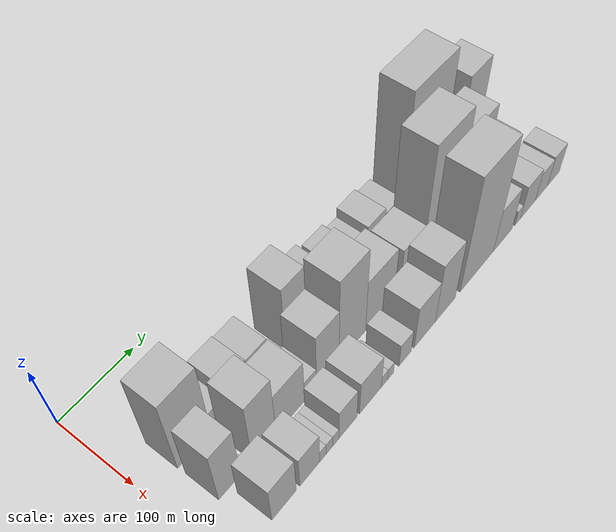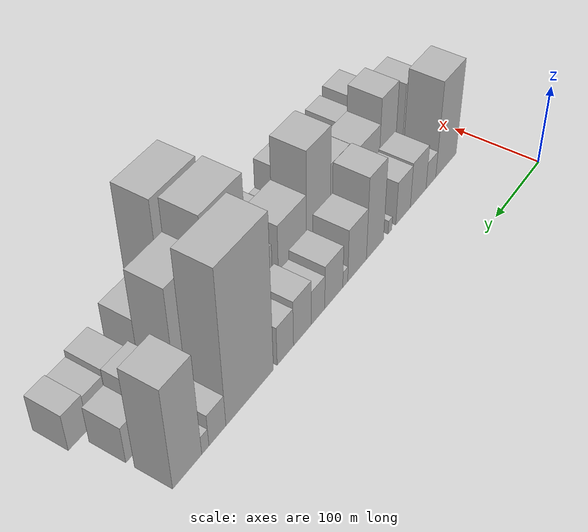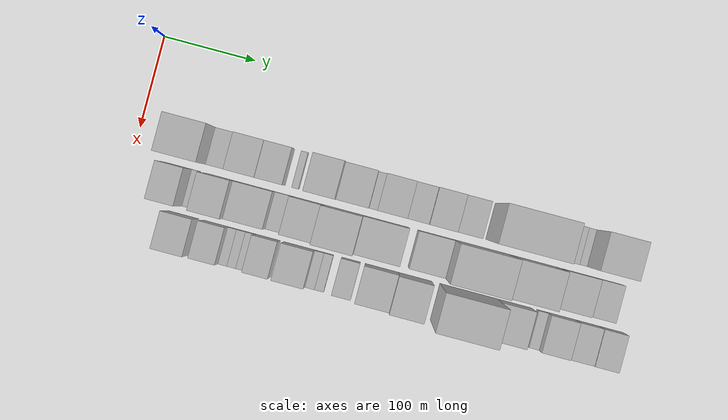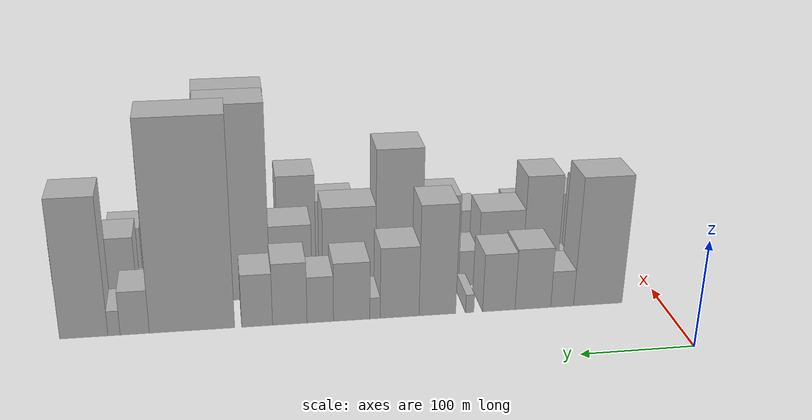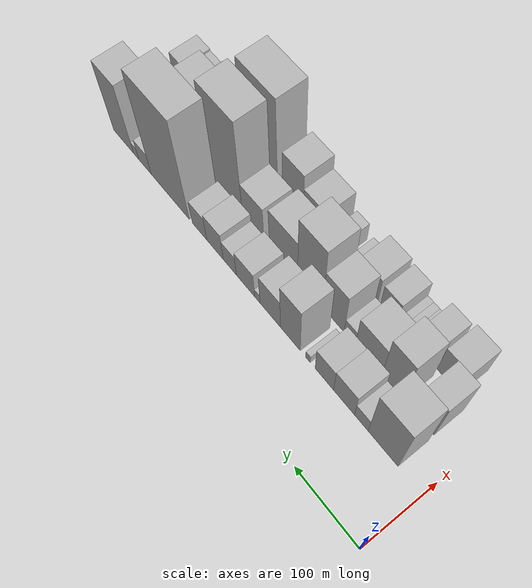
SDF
<sdf version="1.6">
 <world name="default">
  <model name="building_16">
   <static>1</static>
   <pose>100.0000 58.5204 0 0.000000 0.000000 0.000000</pose>
   <link name="link">
    <pose>0 0 63.00 0 0 0</pose>
    <collision name="collision"><geometry><box><size>40.0000 45.3403 126.0000</size></box></geometry></collision>
    <visual name="visual">
     <cast_shadows>0</cast_shadows>
     <geometry><box><size>40.0000 45.3403 126.0000</size></box></geometry>
     <material>
      <script>
       <uri>model://HANNAS_wall/materials/scripts</uri>
       <uri>model://HANNAS_wall/materials/textures</uri>
       <name>vrc/HANNAS_wall</name>
      </script>
     </material>
    </visual>
   </link>
  </model>
  <model name="building_17">
   <static>1</static>
   <pose>100.0000 91.7804 0 0.000000 0.000000 0.000000</pose>
   <link name="link">
    <pose>0 0 18.00 0 0 0</pose>
    <collision name="collision"><geometry><box><size>40.0000 21.1796 36.0000</size></box></geometry></collision>
    <visual name="visual">
     <cast_shadows>0</cast_shadows>
     <geometry><box><size>40.0000 21.1796 36.0000</size></box></geometry>
     <material>
      <script>
       <uri>model://HANNAS_wall/materials/scripts</uri>
       <uri>model://HANNAS_wall/materials/textures</uri>
       <name>vrc/HANNAS_wall</name>
      </script>
     </material>
    </visual>
   </link>
  </model>
  <model name="building_18">
   <static>1</static>
   <pose>100.0000 118.8908 0 0.000000 0.000000 0.000000</pose>
   <link name="link">
    <pose>0 0 30.00 0 0 0</pose>
    <collision name="collision"><geometry><box><size>40.0000 33.0412 60.0000</size></box></geometry></collision>
    <visual name="visual">
     <cast_shadows>0</cast_shadows>
     <geometry><box><size>40.0000 33.0412 60.0000</size></box></geometry>
     <material>
      <script>
       <uri>model://HANNAS_wall/materials/scripts</uri>
       <uri>model://HANNAS_wall/materials/textures</uri>
       <name>vrc/HANNAS_wall</name>
      </script>
     </material>
    </visual>
   </link>
  </model>
  <model name="building_19">
   <static>1</static>
   <pose>100.0000 150.2969 0 0.000000 0.000000 0.000000</pose>
   <link name="link">
    <pose>0 0 28.50 0 0 0</pose>
    <collision name="collision"><geometry><box><size>40.0000 29.7710 57.0000</size></box></geometry></collision>
    <visual name="visual">
     <cast_shadows>0</cast_shadows>
     <geometry><box><size>40.0000 29.7710 57.0000</size></box></geometry>
     <material>
      <script>
       <uri>model://HANNAS_wall/materials/scripts</uri>
       <uri>model://HANNAS_wall/materials/textures</uri>
       <name>vrc/HANNAS_wall</name>
      </script>
     </material>
    </visual>
   </link>
  </model>
  <model name="building_20">
   <static>1</static>
   <pose>100.0000 176.9472 0 0.000000 0.000000 0.000000</pose>
   <link name="link">
    <pose>0 0 9.00 0 0 0</pose>
    <collision name="collision"><geometry><box><size>40.0000 7.5295 18.0000</size></box></geometry></collision>
    <visual name="visual">
     <cast_shadows>0</cast_shadows>
     <geometry><box><size>40.0000 7.5295 18.0000</size></box></geometry>
     <material>
      <script>
       <uri>model://HANNAS_wall/materials/scripts</uri>
       <uri>model://HANNAS_wall/materials/textures</uri>
       <name>vrc/HANNAS_wall</name>
      </script>
     </material>
    </visual>
   </link>
  </model>
  <model name="building_21">
   <static>1</static>
   <pose>100.0000 206.3508 0 0.000000 0.000000 0.000000</pose>
   <link name="link">
    <pose>0 0 54.00 0 0 0</pose>
    <collision name="collision"><geometry><box><size>40.0000 33.2777 108.0000</size></box></geometry></collision>
    <visual name="visual">
     <cast_shadows>0</cast_shadows>
     <geometry><box><size>40.0000 33.2777 108.0000</size></box></geometry>
     <material>
      <script>
       <uri>model://HANNAS_wall/materials/scripts</uri>
       <uri>model://HANNAS_wall/materials/textures</uri>
       <name>vrc/HANNAS_wall</name>
      </script>
     </material>
    </visual>
   </link>
  </model>
  <model name="building_22">
   <static>1</static>
   <pose>100.0000 240.4741 0 0.000000 0.000000 0.000000</pose>
   <link name="link">
    <pose>0 0 34.50 0 0 0</pose>
    <collision name="collision"><geometry><box><size>40.0000 34.9690 69.0000</size></box></geometry></collision>
    <visual name="visual">
     <cast_shadows>0</cast_shadows>
     <geometry><box><size>40.0000 34.9690 69.0000</size></box></geometry>
     <material>
      <script>
       <uri>model://HANNAS_wall/materials/scripts</uri>
       <uri>model://HANNAS_wall/materials/textures</uri>
       <name>vrc/HANNAS_wall</name>
      </script>
     </material>
    </visual>
   </link>
  </model>
  <model name="building_23">
   <static>1</static>
   <pose>100.0000 262.5453 0 0.000000 0.000000 0.000000</pose>
   <link name="link">
    <pose>0 0 10.50 0 0 0</pose>
    <collision name="collision"><geometry><box><size>40.0000 9.1734 21.0000</size></box></geometry></collision>
    <visual name="visual">
     <cast_shadows>0</cast_shadows>
     <geometry><box><size>40.0000 9.1734 21.0000</size></box></geometry>
     <material>
      <script>
       <uri>model://HANNAS_wall/materials/scripts</uri>
       <uri>model://HANNAS_wall/materials/textures</uri>
       <name>vrc/HANNAS_wall</name>
      </script>
     </material>
    </visual>
   </link>
  </model>
  <model name="building_24">
   <static>1</static>
   <pose>100.0000 283.3164 0 0.000000 0.000000 0.000000</pose>
   <link name="link">
    <pose>0 0 28.50 0 0 0</pose>
    <collision name="collision"><geometry><box><size>40.0000 32.3688 57.0000</size></box></geometry></collision>
    <visual name="visual">
     <cast_shadows>0</cast_shadows>
     <geometry><box><size>40.0000 32.3688 57.0000</size></box></geometry>
     <material>
      <script>
       <uri>model://HANNAS_wall/materials/scripts</uri>
       <uri>model://HANNAS_wall/materials/textures</uri>
       <name>vrc/HANNAS_wall</name>
      </script>
     </material>
    </visual>
   </link>
  </model>
  <model name="building_25">
   <static>1</static>
   <pose>100.0000 311.2265 0 0.000000 0.000000 0.000000</pose>
   <link name="link">
    <pose>0 0 22.50 0 0 0</pose>
    <collision name="collision"><geometry><box><size>40.0000 23.4514 45.0000</size></box></geometry></collision>
    <visual name="visual">
     <cast_shadows>0</cast_shadows>
     <geometry><box><size>40.0000 23.4514 45.0000</size></box></geometry>
     <material>
      <script>
       <uri>model://HANNAS_wall/materials/scripts</uri>
       <uri>model://HANNAS_wall/materials/textures</uri>
       <name>vrc/HANNAS_wall</name>
      </script>
     </material>
    </visual>
   </link>
  </model>
  <model name="building_26">
   <static>1</static>
   <pose>100.0000 338.1147 0 0.000000 0.000000 0.000000</pose>
   <link name="link">
    <pose>0 0 30.00 0 0 0</pose>
    <collision name="collision"><geometry><box><size>40.0000 30.3249 60.0000</size></box></geometry></collision>
    <visual name="visual">
     <cast_shadows>0</cast_shadows>
     <geometry><box><size>40.0000 30.3249 60.0000</size></box></geometry>
     <material>
      <script>
       <uri>model://HANNAS_wall/materials/scripts</uri>
       <uri>model://HANNAS_wall/materials/textures</uri>
       <name>vrc/HANNAS_wall</name>
      </script>
     </material>
    </visual>
   </link>
  </model>
  <model name="building_27">
   <static>1</static>
   <pose>100.0000 366.7676 0 0.000000 0.000000 0.000000</pose>
   <link name="link">
    <pose>0 0 25.50 0 0 0</pose>
    <collision name="collision"><geometry><box><size>40.0000 26.9808 51.0000</size></box></geometry></collision>
    <visual name="visual">
     <cast_shadows>0</cast_shadows>
     <geometry><box><size>40.0000 26.9808 51.0000</size></box></geometry>
     <material>
      <script>
       <uri>model://HANNAS_wall/materials/scripts</uri>
       <uri>model://HANNAS_wall/materials/textures</uri>
       <name>vrc/HANNAS_wall</name>
      </script>
     </material>
    </visual>
   </link>
  </model>
  <model name="building_28">
   <static>1</static>
   <pose>100.0000 423.1120 0 0.000000 0.000000 0.000000</pose>
   <link name="link">
    <pose>0 0 99.00 0 0 0</pose>
    <collision name="collision"><geometry><box><size>40.0000 73.7081 198.0000</size></box></geometry></collision>
    <visual name="visual">
     <cast_shadows>0</cast_shadows>
     <geometry><box><size>40.0000 73.7081 198.0000</size></box></geometry>
     <material>
      <script>
       <uri>model://HANNAS_wall/materials/scripts</uri>
       <uri>model://HANNAS_wall/materials/textures</uri>
       <name>vrc/HANNAS_wall</name>
      </script>
     </material>
    </visual>
   </link>
  </model>
  <model name="building_29">
   <static>1</static>
   <pose>100.0000 472.4163 0 0.000000 0.000000 0.000000</pose>
   <link name="link">
    <pose>0 0 21.00 0 0 0</pose>
    <collision name="collision"><geometry><box><size>40.0000 24.9005 42.0000</size></box></geometry></collision>
    <visual name="visual">
     <cast_shadows>0</cast_shadows>
     <geometry><box><size>40.0000 24.9005 42.0000</size></box></geometry>
     <material>
      <script>
       <uri>model://HANNAS_wall/materials/scripts</uri>
       <uri>model://HANNAS_wall/materials/textures</uri>
       <name>vrc/HANNAS_wall</name>
      </script>
     </material>
    </visual>
   </link>
  </model>
  <model name="building_30">
   <static>1</static>
   <pose>100.0000 490.0651 0 0.000000 0.000000 0.000000</pose>
   <link name="link">
    <pose>0 0 12.00 0 0 0</pose>
    <collision name="collision"><geometry><box><size>40.0000 10.3970 24.0000</size></box></geometry></collision>
    <visual name="visual">
     <cast_shadows>0</cast_shadows>
     <geometry><box><size>40.0000 10.3970 24.0000</size></box></geometry>
     <material>
      <script>
       <uri>model://HANNAS_wall/materials/scripts</uri>
       <uri>model://HANNAS_wall/materials/textures</uri>
       <name>vrc/HANNAS_wall</name>
      </script>
     </material>
    </visual>
   </link>
  </model>
  <model name="building_31">
   <static>1</static>
   <pose>100.0000 515.6405 0 0.000000 0.000000 0.000000</pose>
   <link name="link">
    <pose>0 0 66.00 0 0 0</pose>
    <collision name="collision"><geometry><box><size>40.0000 40.7539 132.0000</size></box></geometry></collision>
    <visual name="visual">
     <cast_shadows>0</cast_shadows>
     <geometry><box><size>40.0000 40.7539 132.0000</size></box></geometry>
     <material>
      <script>
       <uri>model://HANNAS_wall/materials/scripts</uri>
       <uri>model://HANNAS_wall/materials/textures</uri>
       <name>vrc/HANNAS_wall</name>
      </script>
     </material>
    </visual>
   </link>
  </model>
  <model name="building_50">
   <static>1</static>
   <pose>149.0000 51.7305 0 0.000000 0.000000 0.000000</pose>
   <link name="link">
    <pose>0 0 46.50 0 0 0</pose>
    <collision name="collision"><geometry><box><size>40.0000 29.9406 93.0000</size></box></geometry></collision>
    <visual name="visual">
     <cast_shadows>0</cast_shadows>
     <geometry><box><size>40.0000 29.9406 93.0000</size></box></geometry>
     <material>
      <script>
       <uri>model://HANNAS_wall/materials/scripts</uri>
       <uri>model://HANNAS_wall/materials/textures</uri>
       <name>vrc/HANNAS_wall</name>
      </script>
     </material>
    </visual>
   </link>
  </model>
  <model name="building_51">
   <static>1</static>
   <pose>149.0000 70.6586 0 0.000000 0.000000 0.000000</pose>
   <link name="link">
    <pose>0 0 9.00 0 0 0</pose>
    <collision name="collision"><geometry><box><size>40.0000 7.9157 18.0000</size></box></geometry></collision>
    <visual name="visual">
     <cast_shadows>0</cast_shadows>
     <geometry><box><size>40.0000 7.9157 18.0000</size></box></geometry>
     <material>
      <script>
       <uri>model://HANNAS_wall/materials/scripts</uri>
       <uri>model://HANNAS_wall/materials/textures</uri>
       <name>vrc/HANNAS_wall</name>
      </script>
     </material>
    </visual>
   </link>
  </model>
  <model name="building_52">
   <static>1</static>
   <pose>149.0000 99.5877 0 0.000000 0.000000 0.000000</pose>
   <link name="link">
    <pose>0 0 54.00 0 0 0</pose>
    <collision name="collision"><geometry><box><size>40.0000 33.9426 108.0000</size></box></geometry></collision>
    <visual name="visual">
     <cast_shadows>0</cast_shadows>
     <geometry><box><size>40.0000 33.9426 108.0000</size></box></geometry>
     <material>
      <script>
       <uri>model://HANNAS_wall/materials/scripts</uri>
       <uri>model://HANNAS_wall/materials/textures</uri>
       <name>vrc/HANNAS_wall</name>
      </script>
     </material>
    </visual>
   </link>
  </model>
  <model name="building_53">
   <static>1</static>
   <pose>149.0000 137.5816 0 0.000000 0.000000 0.000000</pose>
   <link name="link">
    <pose>0 0 37.50 0 0 0</pose>
    <collision name="collision"><geometry><box><size>40.0000 42.0452 75.0000</size></box></geometry></collision>
    <visual name="visual">
     <cast_shadows>0</cast_shadows>
     <geometry><box><size>40.0000 42.0452 75.0000</size></box></geometry>
     <material>
      <script>
       <uri>model://HANNAS_wall/materials/scripts</uri>
       <uri>model://HANNAS_wall/materials/textures</uri>
       <name>vrc/HANNAS_wall</name>
      </script>
     </material>
    </visual>
   </link>
  </model>
  <model name="building_54">
   <static>1</static>
   <pose>149.0000 167.7839 0 0.000000 0.000000 0.000000</pose>
   <link name="link">
    <pose>0 0 18.00 0 0 0</pose>
    <collision name="collision"><geometry><box><size>40.0000 18.3594 36.0000</size></box></geometry></collision>
    <visual name="visual">
     <cast_shadows>0</cast_shadows>
     <geometry><box><size>40.0000 18.3594 36.0000</size></box></geometry>
     <material>
      <script>
       <uri>model://HANNAS_wall/materials/scripts</uri>
       <uri>model://HANNAS_wall/materials/textures</uri>
       <name>vrc/HANNAS_wall</name>
      </script>
     </material>
    </visual>
   </link>
  </model>
  <model name="building_55">
   <static>1</static>
   <pose>149.0000 194.4452 0 0.000000 0.000000 0.000000</pose>
   <link name="link">
    <pose>0 0 46.50 0 0 0</pose>
    <collision name="collision"><geometry><box><size>40.0000 34.9633 93.0000</size></box></geometry></collision>
    <visual name="visual">
     <cast_shadows>0</cast_shadows>
     <geometry><box><size>40.0000 34.9633 93.0000</size></box></geometry>
     <material>
      <script>
       <uri>model://HANNAS_wall/materials/scripts</uri>
       <uri>model://HANNAS_wall/materials/textures</uri>
       <name>vrc/HANNAS_wall</name>
      </script>
     </material>
    </visual>
   </link>
  </model>
  <model name="building_56">
   <static>1</static>
   <pose>149.0000 233.4893 0 0.000000 0.000000 0.000000</pose>
   <link name="link">
    <pose>0 0 70.50 0 0 0</pose>
    <collision name="collision"><geometry><box><size>40.0000 43.1250 141.0000</size></box></geometry></collision>
    <visual name="visual">
     <cast_shadows>0</cast_shadows>
     <geometry><box><size>40.0000 43.1250 141.0000</size></box></geometry>
     <material>
      <script>
       <uri>model://HANNAS_wall/materials/scripts</uri>
       <uri>model://HANNAS_wall/materials/textures</uri>
       <name>vrc/HANNAS_wall</name>
      </script>
     </material>
    </visual>
   </link>
  </model>
  <model name="building_57">
   <static>1</static>
   <pose>149.0000 279.4888 0 0.000000 0.000000 0.000000</pose>
   <link name="link">
    <pose>0 0 43.50 0 0 0</pose>
    <collision name="collision"><geometry><box><size>40.0000 48.8741 87.0000</size></box></geometry></collision>
    <visual name="visual">
     <cast_shadows>0</cast_shadows>
     <geometry><box><size>40.0000 48.8741 87.0000</size></box></geometry>
     <material>
      <script>
       <uri>model://HANNAS_wall/materials/scripts</uri>
       <uri>model://HANNAS_wall/materials/textures</uri>
       <name>vrc/HANNAS_wall</name>
      </script>
     </material>
    </visual>
   </link>
  </model>
  <model name="building_58">
   <static>1</static>
   <pose>149.0000 333.2497 0 0.000000 0.000000 0.000000</pose>
   <link name="link">
    <pose>0 0 36.00 0 0 0</pose>
    <collision name="collision"><geometry><box><size>40.0000 38.6475 72.0000</size></box></geometry></collision>
    <visual name="visual">
     <cast_shadows>0</cast_shadows>
     <geometry><box><size>40.0000 38.6475 72.0000</size></box></geometry>
     <material>
      <script>
       <uri>model://HANNAS_wall/materials/scripts</uri>
       <uri>model://HANNAS_wall/materials/textures</uri>
       <name>vrc/HANNAS_wall</name>
      </script>
     </material>
    </visual>
   </link>
  </model>
  <model name="building_59">
   <static>1</static>
   <pose>149.0000 382.8827 0 0.000000 0.000000 0.000000</pose>
   <link name="link">
    <pose>0 0 94.50 0 0 0</pose>
    <collision name="collision"><geometry><box><size>40.0000 60.6184 189.0000</size></box></geometry></collision>
    <visual name="visual">
     <cast_shadows>0</cast_shadows>
     <geometry><box><size>40.0000 60.6184 189.0000</size></box></geometry>
     <material>
      <script>
       <uri>model://HANNAS_wall/materials/scripts</uri>
       <uri>model://HANNAS_wall/materials/textures</uri>
       <name>vrc/HANNAS_wall</name>
      </script>
     </material>
    </visual>
   </link>
  </model>
  <model name="building_60">
   <static>1</static>
   <pose>149.0000 438.6893 0 0.000000 0.000000 0.000000</pose>
   <link name="link">
    <pose>0 0 75.00 0 0 0</pose>
    <collision name="collision"><geometry><box><size>40.0000 50.9949 150.0000</size></box></geometry></collision>
    <visual name="visual">
     <cast_shadows>0</cast_shadows>
     <geometry><box><size>40.0000 50.9949 150.0000</size></box></geometry>
     <material>
      <script>
       <uri>model://HANNAS_wall/materials/scripts</uri>
       <uri>model://HANNAS_wall/materials/textures</uri>
       <name>vrc/HANNAS_wall</name>
      </script>
     </material>
    </visual>
   </link>
  </model>
  <model name="building_61">
   <static>1</static>
   <pose>149.0000 468.0396 0 0.000000 0.000000 0.000000</pose>
   <link name="link">
    <pose>0 0 9.00 0 0 0</pose>
    <collision name="collision"><geometry><box><size>40.0000 7.7058 18.0000</size></box></geometry></collision>
    <visual name="visual">
     <cast_shadows>0</cast_shadows>
     <geometry><box><size>40.0000 7.7058 18.0000</size></box></geometry>
     <material>
      <script>
       <uri>model://HANNAS_wall/materials/scripts</uri>
       <uri>model://HANNAS_wall/materials/textures</uri>
       <name>vrc/HANNAS_wall</name>
      </script>
     </material>
    </visual>
   </link>
  </model>
  <model name="building_62">
   <static>1</static>
   <pose>149.0000 490.1427 0 0.000000 0.000000 0.000000</pose>
   <link name="link">
    <pose>0 0 34.50 0 0 0</pose>
    <collision name="collision"><geometry><box><size>40.0000 36.5004 69.0000</size></box></geometry></collision>
    <visual name="visual">
     <cast_shadows>0</cast_shadows>
     <geometry><box><size>40.0000 36.5004 69.0000</size></box></geometry>
     <material>
      <script>
       <uri>model://HANNAS_wall/materials/scripts</uri>
       <uri>model://HANNAS_wall/materials/textures</uri>
       <name>vrc/HANNAS_wall</name>
      </script>
     </material>
    </visual>
   </link>
  </model>
  <model name="building_63">
   <static>1</static>
   <pose>149.0000 522.4625 0 0.000000 0.000000 0.000000</pose>
   <link name="link">
    <pose>0 0 24.00 0 0 0</pose>
    <collision name="collision"><geometry><box><size>40.0000 28.1394 48.0000</size></box></geometry></collision>
    <visual name="visual">
     <cast_shadows>0</cast_shadows>
     <geometry><box><size>40.0000 28.1394 48.0000</size></box></geometry>
     <material>
      <script>
       <uri>model://HANNAS_wall/materials/scripts</uri>
       <uri>model://HANNAS_wall/materials/textures</uri>
       <name>vrc/HANNAS_wall</name>
      </script>
     </material>
    </visual>
   </link>
  </model>
  <model name="building_78">
   <static>1</static>
   <pose>198.0000 68.7022 0 0.000000 0.000000 0.000000</pose>
   <link name="link">
    <pose>0 0 33.00 0 0 0</pose>
    <collision name="collision"><geometry><box><size>40.0000 34.0608 66.0000</size></box></geometry></collision>
    <visual name="visual">
     <cast_shadows>0</cast_shadows>
     <geometry><box><size>40.0000 34.0608 66.0000</size></box></geometry>
     <material>
      <script>
       <uri>model://HANNAS_wall/materials/scripts</uri>
       <uri>model://HANNAS_wall/materials/textures</uri>
       <name>vrc/HANNAS_wall</name>
      </script>
     </material>
    </visual>
   </link>
  </model>
  <model name="building_79">
   <static>1</static>
   <pose>198.0000 105.0487 0 0.000000 0.000000 0.000000</pose>
   <link name="link">
    <pose>0 0 28.50 0 0 0</pose>
    <collision name="collision"><geometry><box><size>40.0000 28.6322 57.0000</size></box></geometry></collision>
    <visual name="visual">
     <cast_shadows>0</cast_shadows>
     <geometry><box><size>40.0000 28.6322 57.0000</size></box></geometry>
     <material>
      <script>
       <uri>model://HANNAS_wall/materials/scripts</uri>
       <uri>model://HANNAS_wall/materials/textures</uri>
       <name>vrc/HANNAS_wall</name>
      </script>
     </material>
    </visual>
   </link>
  </model>
  <model name="building_80">
   <static>1</static>
   <pose>198.0000 124.1916 0 0.000000 0.000000 0.000000</pose>
   <link name="link">
    <pose>0 0 10.50 0 0 0</pose>
    <collision name="collision"><geometry><box><size>40.0000 9.6536 21.0000</size></box></geometry></collision>
    <visual name="visual">
     <cast_shadows>0</cast_shadows>
     <geometry><box><size>40.0000 9.6536 21.0000</size></box></geometry>
     <material>
      <script>
       <uri>model://HANNAS_wall/materials/scripts</uri>
       <uri>model://HANNAS_wall/materials/textures</uri>
       <name>vrc/HANNAS_wall</name>
      </script>
     </material>
    </visual>
   </link>
  </model>
  <model name="building_81">
   <static>1</static>
   <pose>198.0000 133.8055 0 0.000000 0.000000 0.000000</pose>
   <link name="link">
    <pose>0 0 10.50 0 0 0</pose>
    <collision name="collision"><geometry><box><size>40.0000 9.5743 21.0000</size></box></geometry></collision>
    <visual name="visual">
     <cast_shadows>0</cast_shadows>
     <geometry><box><size>40.0000 9.5743 21.0000</size></box></geometry>
     <material>
      <script>
       <uri>model://HANNAS_wall/materials/scripts</uri>
       <uri>model://HANNAS_wall/materials/textures</uri>
       <name>vrc/HANNAS_wall</name>
      </script>
     </material>
    </visual>
   </link>
  </model>
  <model name="building_82">
   <static>1</static>
   <pose>198.0000 143.2926 0 0.000000 0.000000 0.000000</pose>
   <link name="link">
    <pose>0 0 10.50 0 0 0</pose>
    <collision name="collision"><geometry><box><size>40.0000 9.3997 21.0000</size></box></geometry></collision>
    <visual name="visual">
     <cast_shadows>0</cast_shadows>
     <geometry><box><size>40.0000 9.3997 21.0000</size></box></geometry>
     <material>
      <script>
       <uri>model://HANNAS_wall/materials/scripts</uri>
       <uri>model://HANNAS_wall/materials/textures</uri>
       <name>vrc/HANNAS_wall</name>
      </script>
     </material>
    </visual>
   </link>
  </model>
  <model name="building_83">
   <static>1</static>
   <pose>198.0000 161.8234 0 0.000000 0.000000 0.000000</pose>
   <link name="link">
    <pose>0 0 27.00 0 0 0</pose>
    <collision name="collision"><geometry><box><size>40.0000 27.6619 54.0000</size></box></geometry></collision>
    <visual name="visual">
     <cast_shadows>0</cast_shadows>
     <geometry><box><size>40.0000 27.6619 54.0000</size></box></geometry>
     <material>
      <script>
       <uri>model://HANNAS_wall/materials/scripts</uri>
       <uri>model://HANNAS_wall/materials/textures</uri>
       <name>vrc/HANNAS_wall</name>
      </script>
     </material>
    </visual>
   </link>
  </model>
  <model name="building_84">
   <static>1</static>
   <pose>198.0000 196.9028 0 0.000000 0.000000 0.000000</pose>
   <link name="link">
    <pose>0 0 30.00 0 0 0</pose>
    <collision name="collision"><geometry><box><size>40.0000 34.4970 60.0000</size></box></geometry></collision>
    <visual name="visual">
     <cast_shadows>0</cast_shadows>
     <geometry><box><size>40.0000 34.4970 60.0000</size></box></geometry>
     <material>
      <script>
       <uri>model://HANNAS_wall/materials/scripts</uri>
       <uri>model://HANNAS_wall/materials/textures</uri>
       <name>vrc/HANNAS_wall</name>
      </script>
     </material>
    </visual>
   </link>
  </model>
  <model name="building_85">
   <static>1</static>
   <pose>198.0000 219.3138 0 0.000000 0.000000 0.000000</pose>
   <link name="link">
    <pose>0 0 10.50 0 0 0</pose>
    <collision name="collision"><geometry><box><size>40.0000 10.3251 21.0000</size></box></geometry></collision>
    <visual name="visual">
     <cast_shadows>0</cast_shadows>
     <geometry><box><size>40.0000 10.3251 21.0000</size></box></geometry>
     <material>
      <script>
       <uri>model://HANNAS_wall/materials/scripts</uri>
       <uri>model://HANNAS_wall/materials/textures</uri>
       <name>vrc/HANNAS_wall</name>
      </script>
     </material>
    </visual>
   </link>
  </model>
  <model name="building_86">
   <static>1</static>
   <pose>198.0000 229.4878 0 0.000000 0.000000 0.000000</pose>
   <link name="link">
    <pose>0 0 10.50 0 0 0</pose>
    <collision name="collision"><geometry><box><size>40.0000 10.0229 21.0000</size></box></geometry></collision>
    <visual name="visual">
     <cast_shadows>0</cast_shadows>
     <geometry><box><size>40.0000 10.0229 21.0000</size></box></geometry>
     <material>
      <script>
       <uri>model://HANNAS_wall/materials/scripts</uri>
       <uri>model://HANNAS_wall/materials/textures</uri>
       <name>vrc/HANNAS_wall</name>
      </script>
     </material>
    </visual>
   </link>
  </model>
  <model name="building_87">
   <static>1</static>
   <pose>198.0000 253.8025 0 0.000000 0.000000 0.000000</pose>
   <link name="link">
    <pose>0 0 19.50 0 0 0</pose>
    <collision name="collision"><geometry><box><size>40.0000 20.6064 39.0000</size></box></geometry></collision>
    <visual name="visual">
     <cast_shadows>0</cast_shadows>
     <geometry><box><size>40.0000 20.6064 39.0000</size></box></geometry>
     <material>
      <script>
       <uri>model://HANNAS_wall/materials/scripts</uri>
       <uri>model://HANNAS_wall/materials/textures</uri>
       <name>vrc/HANNAS_wall</name>
      </script>
     </material>
    </visual>
   </link>
  </model>
  <model name="building_88">
   <static>1</static>
   <pose>198.0000 287.5038 0 0.000000 0.000000 0.000000</pose>
   <link name="link">
    <pose>0 0 36.00 0 0 0</pose>
    <collision name="collision"><geometry><box><size>40.0000 36.7962 72.0000</size></box></geometry></collision>
    <visual name="visual">
     <cast_shadows>0</cast_shadows>
     <geometry><box><size>40.0000 36.7962 72.0000</size></box></geometry>
     <material>
      <script>
       <uri>model://HANNAS_wall/materials/scripts</uri>
       <uri>model://HANNAS_wall/materials/textures</uri>
       <name>vrc/HANNAS_wall</name>
      </script>
     </material>
    </visual>
   </link>
  </model>
  <model name="building_89">
   <static>1</static>
   <pose>198.0000 324.1261 0 0.000000 0.000000 0.000000</pose>
   <link name="link">
    <pose>0 0 49.50 0 0 0</pose>
    <collision name="collision"><geometry><box><size>40.0000 36.4483 99.0000</size></box></geometry></collision>
    <visual name="visual">
     <cast_shadows>0</cast_shadows>
     <geometry><box><size>40.0000 36.4483 99.0000</size></box></geometry>
     <material>
      <script>
       <uri>model://HANNAS_wall/materials/scripts</uri>
       <uri>model://HANNAS_wall/materials/textures</uri>
       <name>vrc/HANNAS_wall</name>
      </script>
     </material>
    </visual>
   </link>
  </model>
  <model name="building_90">
   <static>1</static>
   <pose>198.0000 383.1008 0 0.000000 0.000000 0.000000</pose>
   <link name="link">
    <pose>0 0 91.50 0 0 0</pose>
    <collision name="collision"><geometry><box><size>40.0000 63.5012 183.0000</size></box></geometry></collision>
    <visual name="visual">
     <cast_shadows>0</cast_shadows>
     <geometry><box><size>40.0000 63.5012 183.0000</size></box></geometry>
     <material>
      <script>
       <uri>model://HANNAS_wall/materials/scripts</uri>
       <uri>model://HANNAS_wall/materials/textures</uri>
       <name>vrc/HANNAS_wall</name>
      </script>
     </material>
    </visual>
   </link>
  </model>
  <model name="building_91">
   <static>1</static>
   <pose>198.0000 433.5675 0 0.000000 0.000000 0.000000</pose>
   <link name="link">
    <pose>0 0 34.50 0 0 0</pose>
    <collision name="collision"><geometry><box><size>40.0000 37.4322 69.0000</size></box></geometry></collision>
    <visual name="visual">
     <cast_shadows>0</cast_shadows>
     <geometry><box><size>40.0000 37.4322 69.0000</size></box></geometry>
     <material>
      <script>
       <uri>model://HANNAS_wall/materials/scripts</uri>
       <uri>model://HANNAS_wall/materials/textures</uri>
       <name>vrc/HANNAS_wall</name>
      </script>
     </material>
    </visual>
   </link>
  </model>
  <model name="building_92">
   <static>1</static>
   <pose>198.0000 463.8087 0 0.000000 0.000000 0.000000</pose>
   <link name="link">
    <pose>0 0 12.00 0 0 0</pose>
    <collision name="collision"><geometry><box><size>40.0000 11.0504 24.0000</size></box></geometry></collision>
    <visual name="visual">
     <cast_shadows>0</cast_shadows>
     <geometry><box><size>40.0000 11.0504 24.0000</size></box></geometry>
     <material>
      <script>
       <uri>model://HANNAS_wall/materials/scripts</uri>
       <uri>model://HANNAS_wall/materials/textures</uri>
       <name>vrc/HANNAS_wall</name>
      </script>
     </material>
    </visual>
   </link>
  </model>
  <model name="building_93">
   <static>1</static>
   <pose>198.0000 484.9475 0 0.000000 0.000000 0.000000</pose>
   <link name="link">
    <pose>0 0 27.00 0 0 0</pose>
    <collision name="collision"><geometry><box><size>40.0000 31.2271 54.0000</size></box></geometry></collision>
    <visual name="visual">
     <cast_shadows>0</cast_shadows>
     <geometry><box><size>40.0000 31.2271 54.0000</size></box></geometry>
     <material>
      <script>
       <uri>model://HANNAS_wall/materials/scripts</uri>
       <uri>model://HANNAS_wall/materials/textures</uri>
       <name>vrc/HANNAS_wall</name>
      </script>
     </material>
    </visual>
   </link>
  </model>
  <model name="building_94">
   <static>1</static>
   <pose>198.0000 513.7897 0 0.000000 0.000000 0.000000</pose>
   <link name="link">
    <pose>0 0 22.50 0 0 0</pose>
    <collision name="collision"><geometry><box><size>40.0000 26.4574 45.0000</size></box></geometry></collision>
    <visual name="visual">
     <cast_shadows>0</cast_shadows>
     <geometry><box><size>40.0000 26.4574 45.0000</size></box></geometry>
     <material>
      <script>
       <uri>model://HANNAS_wall/materials/scripts</uri>
       <uri>model://HANNAS_wall/materials/textures</uri>
       <name>vrc/HANNAS_wall</name>
      </script>
     </material>
    </visual>
   </link>
  </model>
  <model name="building_95">
   <static>1</static>
   <pose>198.0000 540.0694 0 0.000000 0.000000 0.000000</pose>
   <link name="link">
    <pose>0 0 24.00 0 0 0</pose>
    <collision name="collision"><geometry><box><size>40.0000 26.1021 48.0000</size></box></geometry></collision>
    <visual name="visual">
     <cast_shadows>0</cast_shadows>
     <geometry><box><size>40.0000 26.1021 48.0000</size></box></geometry>
     <material>
      <script>
       <uri>model://HANNAS_wall/materials/scripts</uri>
       <uri>model://HANNAS_wall/materials/textures</uri>
       <name>vrc/HANNAS_wall</name>
      </script>
     </material>
    </visual>
   </link>
  </model>
 </world>
</sdf>
